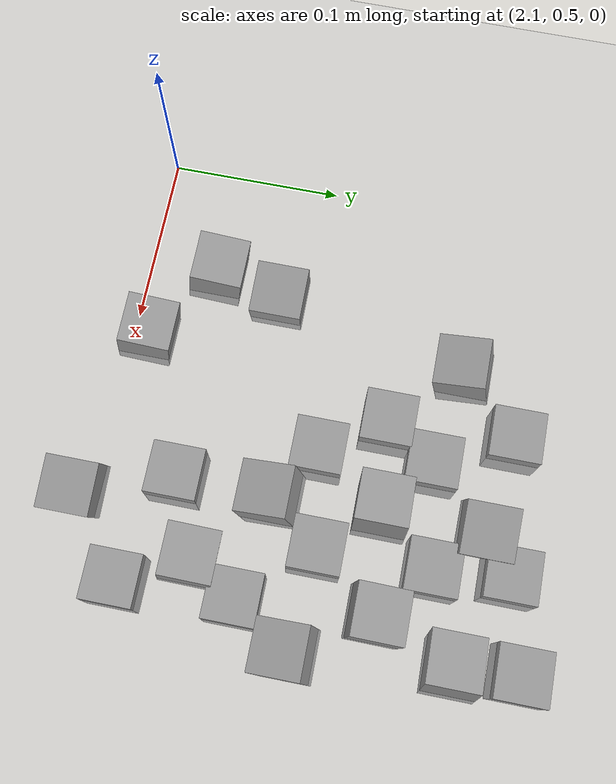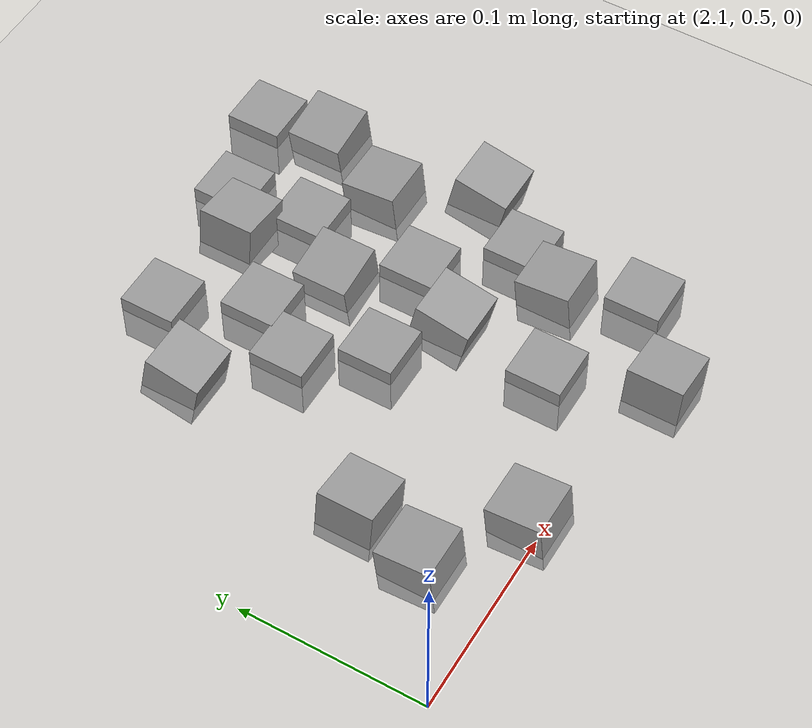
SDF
<sdf version="1.7">
 <world name="default">
  <model name="ground_plane">
   <static>1</static>
   <link name="link">
    <collision name="collision">
     <geometry><plane><normal>0 0 1</normal><size>100 100</size></plane></geometry>
     <surface><friction><ode><mu>100</mu><mu2>50</mu2></ode></friction></surface>
    </collision>
    <visual name="visual">
     <cast_shadows>0</cast_shadows>
     <geometry><plane><normal>0 0 1</normal><size>100 100</size></plane></geometry>
     <material>
      <script><uri>file://media/materials/scripts/gazebo.material</uri><name>Gazebo/Grey</name></script>
     </material>
    </visual>
   </link>
  </model>
  <model name="stone_road_3">
   <link name="link_0_clone_2_clone_2_clone_13_clone">
    <inertial>
     <mass>1</mass>
     <inertia>
      <ixx>0.166667</ixx>
      <ixy>0</ixy>
      <ixz>0</ixz>
      <iyy>0.166667</iyy>
      <iyz>0</iyz>
      <izz>0.166667</izz>
     </inertia>
    </inertial>
    <pose>0.138846 0.140956 0.003778 -0.1 0 0</pose>
    <kinematic>1</kinematic>
    <visual name="visual">
     <geometry><box><size>0.03 0.03 0.03</size></box></geometry>
     <material>
      <lighting>1</lighting>
      <script><uri>file://media/materials/scripts/gazebo.material</uri><name>Gazebo/Grey</name></script>
      <shader type="pixel"><normal_map>__default__</normal_map></shader>
      <ambient>0.3 0.3 0.3 1</ambient>
      <diffuse>0.7 0.7 0.7 1</diffuse>
      <specular>0.01 0.01 0.01 1</specular>
      <emissive>0 0 0 1</emissive>
     </material>
    </visual>
    <collision name="collision">
     <geometry><box><size>0.03 0.03 0.03</size></box></geometry>
     <surface>
      <friction>
       <ode><mu>1</mu><mu2>1</mu2><fdir1>0 0 0</fdir1><slip1>0</slip1><slip2>0</slip2></ode>
       <torsional>
        <coefficient>1</coefficient>
        <patch_radius>0</patch_radius>
        <surface_radius>0</surface_radius>
        <use_patch_radius>1</use_patch_radius>
        <ode><slip>0</slip></ode>
       </torsional>
      </friction>
      <bounce><restitution_coefficient>0</restitution_coefficient><threshold>1e+06</threshold></bounce>
      <contact>
       <collide_without_contact>0</collide_without_contact>
       <collide_without_contact_bitmask>1</collide_without_contact_bitmask>
       <collide_bitmask>1</collide_bitmask>
       <ode>
        <soft_cfm>0</soft_cfm>
        <soft_erp>0.2</soft_erp>
        <kp>1e+13</kp>
        <kd>1</kd>
        <max_vel>0.01</max_vel>
        <min_depth>0</min_depth>
       </ode>
       <bullet>
        <split_impulse>1</split_impulse>
        <split_impulse_penetration_threshold>-0.01</split_impulse_penetration_threshold>
        <soft_cfm>0</soft_cfm>
        <soft_erp>0.2</soft_erp>
        <kp>1e+13</kp>
        <kd>1</kd>
       </bullet>
      </contact>
     </surface>
    </collision>
   </link>
   <link name="link_0_clone_2_clone_2_clone_13_clone_clone">
    <inertial>
     <mass>1</mass>
     <inertia>
      <ixx>0.166667</ixx>
      <ixy>0</ixy>
      <ixz>0</ixz>
      <iyy>0.166667</iyy>
      <iyz>0</iyz>
      <izz>0.166667</izz>
     </inertia>
    </inertial>
    <pose>0.184456 0.108712 0.003778 -0.1 0 0</pose>
    <kinematic>1</kinematic>
    <visual name="visual">
     <geometry><box><size>0.03 0.03 0.03</size></box></geometry>
     <material>
      <lighting>1</lighting>
      <script><uri>file://media/materials/scripts/gazebo.material</uri><name>Gazebo/Grey</name></script>
      <shader type="pixel"><normal_map>__default__</normal_map></shader>
      <ambient>0.3 0.3 0.3 1</ambient>
      <diffuse>0.7 0.7 0.7 1</diffuse>
      <specular>0.01 0.01 0.01 1</specular>
      <emissive>0 0 0 1</emissive>
     </material>
    </visual>
    <collision name="collision">
     <geometry><box><size>0.03 0.03 0.03</size></box></geometry>
     <surface>
      <friction>
       <ode><mu>1</mu><mu2>1</mu2><fdir1>0 0 0</fdir1><slip1>0</slip1><slip2>0</slip2></ode>
       <torsional>
        <coefficient>1</coefficient>
        <patch_radius>0</patch_radius>
        <surface_radius>0</surface_radius>
        <use_patch_radius>1</use_patch_radius>
        <ode><slip>0</slip></ode>
       </torsional>
      </friction>
      <bounce><restitution_coefficient>0</restitution_coefficient><threshold>1e+06</threshold></bounce>
      <contact>
       <collide_without_contact>0</collide_without_contact>
       <collide_without_contact_bitmask>1</collide_without_contact_bitmask>
       <collide_bitmask>1</collide_bitmask>
       <ode>
        <soft_cfm>0</soft_cfm>
        <soft_erp>0.2</soft_erp>
        <kp>1e+13</kp>
        <kd>1</kd>
        <max_vel>0.01</max_vel>
        <min_depth>0</min_depth>
       </ode>
       <bullet>
        <split_impulse>1</split_impulse>
        <split_impulse_penetration_threshold>-0.01</split_impulse_penetration_threshold>
        <soft_cfm>0</soft_cfm>
        <soft_erp>0.2</soft_erp>
        <kp>1e+13</kp>
        <kd>1</kd>
       </bullet>
      </contact>
     </surface>
    </collision>
   </link>
   <link name="link_0_clone_2_clone_9">
    <inertial>
     <mass>1</mass>
     <inertia>
      <ixx>0.166667</ixx>
      <ixy>0</ixy>
      <ixz>0</ixz>
      <iyy>0.166667</iyy>
      <iyz>0</iyz>
      <izz>0.166667</izz>
     </inertia>
    </inertial>
    <pose>0.148876 0.179752 0.003778 0 0.15 0</pose>
    <kinematic>1</kinematic>
    <visual name="visual">
     <geometry><box><size>0.03 0.03 0.03</size></box></geometry>
     <material>
      <lighting>1</lighting>
      <script><uri>file://media/materials/scripts/gazebo.material</uri><name>Gazebo/Grey</name></script>
      <shader type="pixel"><normal_map>__default__</normal_map></shader>
      <ambient>0.3 0.3 0.3 1</ambient>
      <diffuse>0.7 0.7 0.7 1</diffuse>
      <specular>0.01 0.01 0.01 1</specular>
      <emissive>0 0 0 1</emissive>
     </material>
    </visual>
    <collision name="collision">
     <geometry><box><size>0.03 0.03 0.03</size></box></geometry>
     <surface>
      <friction>
       <ode><mu>1</mu><mu2>1</mu2><fdir1>0 0 0</fdir1><slip1>0</slip1><slip2>0</slip2></ode>
       <torsional>
        <coefficient>1</coefficient>
        <patch_radius>0</patch_radius>
        <surface_radius>0</surface_radius>
        <use_patch_radius>1</use_patch_radius>
        <ode><slip>0</slip></ode>
       </torsional>
      </friction>
      <bounce><restitution_coefficient>0</restitution_coefficient><threshold>1e+06</threshold></bounce>
      <contact>
       <collide_without_contact>0</collide_without_contact>
       <collide_without_contact_bitmask>1</collide_without_contact_bitmask>
       <collide_bitmask>1</collide_bitmask>
       <ode>
        <soft_cfm>0</soft_cfm>
        <soft_erp>0.2</soft_erp>
        <kp>1e+13</kp>
        <kd>1</kd>
        <max_vel>0.01</max_vel>
        <min_depth>0</min_depth>
       </ode>
       <bullet>
        <split_impulse>1</split_impulse>
        <split_impulse_penetration_threshold>-0.01</split_impulse_penetration_threshold>
        <soft_cfm>0</soft_cfm>
        <soft_erp>0.2</soft_erp>
        <kp>1e+13</kp>
        <kd>1</kd>
       </bullet>
      </contact>
     </surface>
    </collision>
   </link>
   <static>0</static>
   <pose>2.02404 0.399702 -0 0 -0 0</pose>
  </model>
  <model name="stone_road_8">
   <link name="link_0_clone_0">
    <inertial>
     <mass>1</mass>
     <inertia>
      <ixx>0.166667</ixx>
      <ixy>0</ixy>
      <ixz>0</ixz>
      <iyy>0.166667</iyy>
      <iyz>0</iyz>
      <izz>0.166667</izz>
     </inertia>
    </inertial>
    <pose>-0.104982 -0.15412 0.003778 0.2 -0 0</pose>
    <kinematic>1</kinematic>
    <visual name="visual">
     <geometry><box><size>0.03 0.03 0.03</size></box></geometry>
     <material>
      <lighting>1</lighting>
      <script><uri>file://media/materials/scripts/gazebo.material</uri><name>Gazebo/Grey</name></script>
      <shader type="pixel"><normal_map>__default__</normal_map></shader>
      <ambient>0.3 0.3 0.3 1</ambient>
      <diffuse>0.7 0.7 0.7 1</diffuse>
      <specular>0.01 0.01 0.01 1</specular>
      <emissive>0 0 0 1</emissive>
     </material>
    </visual>
    <collision name="collision">
     <geometry><box><size>0.03 0.03 0.03</size></box></geometry>
     <surface>
      <friction>
       <ode><mu>1</mu><mu2>1</mu2><fdir1>0 0 0</fdir1><slip1>0</slip1><slip2>0</slip2></ode>
       <torsional>
        <coefficient>1</coefficient>
        <patch_radius>0</patch_radius>
        <surface_radius>0</surface_radius>
        <use_patch_radius>1</use_patch_radius>
        <ode><slip>0</slip></ode>
       </torsional>
      </friction>
      <bounce><restitution_coefficient>0</restitution_coefficient><threshold>1e+06</threshold></bounce>
      <contact>
       <collide_without_contact>0</collide_without_contact>
       <collide_without_contact_bitmask>1</collide_without_contact_bitmask>
       <collide_bitmask>1</collide_bitmask>
       <ode>
        <soft_cfm>0</soft_cfm>
        <soft_erp>0.2</soft_erp>
        <kp>1e+13</kp>
        <kd>1</kd>
        <max_vel>0.01</max_vel>
        <min_depth>0</min_depth>
       </ode>
       <bullet>
        <split_impulse>1</split_impulse>
        <split_impulse_penetration_threshold>-0.01</split_impulse_penetration_threshold>
        <soft_cfm>0</soft_cfm>
        <soft_erp>0.2</soft_erp>
        <kp>1e+13</kp>
        <kd>1</kd>
       </bullet>
      </contact>
     </surface>
    </collision>
   </link>
   <link name="link_0_clone_1">
    <inertial>
     <mass>1</mass>
     <inertia>
      <ixx>0.166667</ixx>
      <ixy>0</ixy>
      <ixz>0</ixz>
      <iyy>0.166667</iyy>
      <iyz>0</iyz>
      <izz>0.166667</izz>
     </inertia>
    </inertial>
    <pose>-0.022921 -0.129606 0.003778 0.2 -0 0</pose>
    <kinematic>1</kinematic>
    <visual name="visual">
     <geometry><box><size>0.03 0.03 0.03</size></box></geometry>
     <material>
      <lighting>1</lighting>
      <script><uri>file://media/materials/scripts/gazebo.material</uri><name>Gazebo/Grey</name></script>
      <shader type="pixel"><normal_map>__default__</normal_map></shader>
      <ambient>0.3 0.3 0.3 1</ambient>
      <diffuse>0.7 0.7 0.7 1</diffuse>
      <specular>0.01 0.01 0.01 1</specular>
      <emissive>0 0 0 1</emissive>
     </material>
    </visual>
    <collision name="collision">
     <geometry><box><size>0.03 0.03 0.03</size></box></geometry>
     <surface>
      <friction>
       <ode><mu>1</mu><mu2>1</mu2><fdir1>0 0 0</fdir1><slip1>0</slip1><slip2>0</slip2></ode>
       <torsional>
        <coefficient>1</coefficient>
        <patch_radius>0</patch_radius>
        <surface_radius>0</surface_radius>
        <use_patch_radius>1</use_patch_radius>
        <ode><slip>0</slip></ode>
       </torsional>
      </friction>
      <bounce><restitution_coefficient>0</restitution_coefficient><threshold>1e+06</threshold></bounce>
      <contact>
       <collide_without_contact>0</collide_without_contact>
       <collide_without_contact_bitmask>1</collide_without_contact_bitmask>
       <collide_bitmask>1</collide_bitmask>
       <ode>
        <soft_cfm>0</soft_cfm>
        <soft_erp>0.2</soft_erp>
        <kp>1e+13</kp>
        <kd>1</kd>
        <max_vel>0.01</max_vel>
        <min_depth>0</min_depth>
       </ode>
       <bullet>
        <split_impulse>1</split_impulse>
        <split_impulse_penetration_threshold>-0.01</split_impulse_penetration_threshold>
        <soft_cfm>0</soft_cfm>
        <soft_erp>0.2</soft_erp>
        <kp>1e+13</kp>
        <kd>1</kd>
       </bullet>
      </contact>
     </surface>
    </collision>
   </link>
   <link name="link_0_clone_2_clone">
    <inertial>
     <mass>1</mass>
     <inertia>
      <ixx>0.166667</ixx>
      <ixy>0</ixy>
      <ixz>0</ixz>
      <iyy>0.166667</iyy>
      <iyz>0</iyz>
      <izz>0.166667</izz>
     </inertia>
    </inertial>
    <pose>-0.10771 -0.03187 0.003778 0 0.15 0</pose>
    <kinematic>1</kinematic>
    <visual name="visual">
     <geometry><box><size>0.03 0.03 0.03</size></box></geometry>
     <material>
      <lighting>1</lighting>
      <script><uri>file://media/materials/scripts/gazebo.material</uri><name>Gazebo/Grey</name></script>
      <shader type="pixel"><normal_map>__default__</normal_map></shader>
      <ambient>0.3 0.3 0.3 1</ambient>
      <diffuse>0.7 0.7 0.7 1</diffuse>
      <specular>0.01 0.01 0.01 1</specular>
      <emissive>0 0 0 1</emissive>
     </material>
    </visual>
    <collision name="collision">
     <geometry><box><size>0.03 0.03 0.03</size></box></geometry>
     <surface>
      <friction>
       <ode><mu>1</mu><mu2>1</mu2><fdir1>0 0 0</fdir1><slip1>0</slip1><slip2>0</slip2></ode>
       <torsional>
        <coefficient>1</coefficient>
        <patch_radius>0</patch_radius>
        <surface_radius>0</surface_radius>
        <use_patch_radius>1</use_patch_radius>
        <ode><slip>0</slip></ode>
       </torsional>
      </friction>
      <bounce><restitution_coefficient>0</restitution_coefficient><threshold>1e+06</threshold></bounce>
      <contact>
       <collide_without_contact>0</collide_without_contact>
       <collide_without_contact_bitmask>1</collide_without_contact_bitmask>
       <collide_bitmask>1</collide_bitmask>
       <ode>
        <soft_cfm>0</soft_cfm>
        <soft_erp>0.2</soft_erp>
        <kp>1e+13</kp>
        <kd>1</kd>
        <max_vel>0.01</max_vel>
        <min_depth>0</min_depth>
       </ode>
       <bullet>
        <split_impulse>1</split_impulse>
        <split_impulse_penetration_threshold>-0.01</split_impulse_penetration_threshold>
        <soft_cfm>0</soft_cfm>
        <soft_erp>0.2</soft_erp>
        <kp>1e+13</kp>
        <kd>1</kd>
       </bullet>
      </contact>
     </surface>
    </collision>
   </link>
   <link name="link_0_clone_2_clone_2_clone_0">
    <inertial>
     <mass>1</mass>
     <inertia>
      <ixx>0.166667</ixx>
      <ixy>0</ixy>
      <ixz>0</ixz>
      <iyy>0.166667</iyy>
      <iyz>0</iyz>
      <izz>0.166667</izz>
     </inertia>
    </inertial>
    <pose>-0.032874 -0.039714 0.003778 0 -0.15 0</pose>
    <kinematic>1</kinematic>
    <visual name="visual">
     <geometry><box><size>0.03 0.03 0.03</size></box></geometry>
     <material>
      <lighting>1</lighting>
      <script><uri>file://media/materials/scripts/gazebo.material</uri><name>Gazebo/Grey</name></script>
      <shader type="pixel"><normal_map>__default__</normal_map></shader>
      <ambient>0.3 0.3 0.3 1</ambient>
      <diffuse>0.7 0.7 0.7 1</diffuse>
      <specular>0.01 0.01 0.01 1</specular>
      <emissive>0 0 0 1</emissive>
     </material>
    </visual>
    <collision name="collision">
     <geometry><box><size>0.03 0.03 0.03</size></box></geometry>
     <surface>
      <friction>
       <ode><mu>1</mu><mu2>1</mu2><fdir1>0 0 0</fdir1><slip1>0</slip1><slip2>0</slip2></ode>
       <torsional>
        <coefficient>1</coefficient>
        <patch_radius>0</patch_radius>
        <surface_radius>0</surface_radius>
        <use_patch_radius>1</use_patch_radius>
        <ode><slip>0</slip></ode>
       </torsional>
      </friction>
      <bounce><restitution_coefficient>0</restitution_coefficient><threshold>1e+06</threshold></bounce>
      <contact>
       <collide_without_contact>0</collide_without_contact>
       <collide_without_contact_bitmask>1</collide_without_contact_bitmask>
       <collide_bitmask>1</collide_bitmask>
       <ode>
        <soft_cfm>0</soft_cfm>
        <soft_erp>0.2</soft_erp>
        <kp>1e+13</kp>
        <kd>1</kd>
        <max_vel>0.01</max_vel>
        <min_depth>0</min_depth>
       </ode>
       <bullet>
        <split_impulse>1</split_impulse>
        <split_impulse_penetration_threshold>-0.01</split_impulse_penetration_threshold>
        <soft_cfm>0</soft_cfm>
        <soft_erp>0.2</soft_erp>
        <kp>1e+13</kp>
        <kd>1</kd>
       </bullet>
      </contact>
     </surface>
    </collision>
   </link>
   <link name="link_0_clone_2_clone_2_clone_13_clone_clone_16_clone_10">
    <inertial>
     <mass>1</mass>
     <inertia>
      <ixx>0.166667</ixx>
      <ixy>0</ixy>
      <ixz>0</ixz>
      <iyy>0.166667</iyy>
      <iyz>0</iyz>
      <izz>0.166667</izz>
     </inertia>
    </inertial>
    <pose>-0.082186 -0.05781 -0.006222 0 -0 0</pose>
    <kinematic>1</kinematic>
    <visual name="visual">
     <geometry><box><size>0.03 0.03 0.03</size></box></geometry>
     <material>
      <lighting>1</lighting>
      <script><uri>file://media/materials/scripts/gazebo.material</uri><name>Gazebo/Grey</name></script>
      <shader type="pixel"><normal_map>__default__</normal_map></shader>
      <ambient>0.3 0.3 0.3 1</ambient>
      <diffuse>0.7 0.7 0.7 1</diffuse>
      <specular>0.01 0.01 0.01 1</specular>
      <emissive>0 0 0 1</emissive>
     </material>
    </visual>
    <collision name="collision">
     <geometry><box><size>0.03 0.03 0.03</size></box></geometry>
     <surface>
      <friction>
       <ode><mu>1</mu><mu2>1</mu2><fdir1>0 0 0</fdir1><slip1>0</slip1><slip2>0</slip2></ode>
       <torsional>
        <coefficient>1</coefficient>
        <patch_radius>0</patch_radius>
        <surface_radius>0</surface_radius>
        <use_patch_radius>1</use_patch_radius>
        <ode><slip>0</slip></ode>
       </torsional>
      </friction>
      <bounce><restitution_coefficient>0</restitution_coefficient><threshold>1e+06</threshold></bounce>
      <contact>
       <collide_without_contact>0</collide_without_contact>
       <collide_without_contact_bitmask>1</collide_without_contact_bitmask>
       <collide_bitmask>1</collide_bitmask>
       <ode>
        <soft_cfm>0</soft_cfm>
        <soft_erp>0.2</soft_erp>
        <kp>1e+13</kp>
        <kd>1</kd>
        <max_vel>0.01</max_vel>
        <min_depth>0</min_depth>
       </ode>
       <bullet>
        <split_impulse>1</split_impulse>
        <split_impulse_penetration_threshold>-0.01</split_impulse_penetration_threshold>
        <soft_cfm>0</soft_cfm>
        <soft_erp>0.2</soft_erp>
        <kp>1e+13</kp>
        <kd>1</kd>
       </bullet>
      </contact>
     </surface>
    </collision>
   </link>
   <link name="link_0_clone_2_clone_2_clone_13_clone_clone_16_clone_11">
    <inertial>
     <mass>1</mass>
     <inertia>
      <ixx>0.166667</ixx>
      <ixy>0</ixy>
      <ixz>0</ixz>
      <iyy>0.166667</iyy>
      <iyz>0</iyz>
      <izz>0.166667</izz>
     </inertia>
    </inertial>
    <pose>-0.141844 -0.066911 -0.006222 0 -0 0</pose>
    <kinematic>1</kinematic>
    <visual name="visual">
     <geometry><box><size>0.03 0.03 0.03</size></box></geometry>
     <material>
      <lighting>1</lighting>
      <script><uri>file://media/materials/scripts/gazebo.material</uri><name>Gazebo/Grey</name></script>
      <shader type="pixel"><normal_map>__default__</normal_map></shader>
      <ambient>0.3 0.3 0.3 1</ambient>
      <diffuse>0.7 0.7 0.7 1</diffuse>
      <specular>0.01 0.01 0.01 1</specular>
      <emissive>0 0 0 1</emissive>
     </material>
    </visual>
    <collision name="collision">
     <geometry><box><size>0.03 0.03 0.03</size></box></geometry>
     <surface>
      <friction>
       <ode><mu>1</mu><mu2>1</mu2><fdir1>0 0 0</fdir1><slip1>0</slip1><slip2>0</slip2></ode>
       <torsional>
        <coefficient>1</coefficient>
        <patch_radius>0</patch_radius>
        <surface_radius>0</surface_radius>
        <use_patch_radius>1</use_patch_radius>
        <ode><slip>0</slip></ode>
       </torsional>
      </friction>
      <bounce><restitution_coefficient>0</restitution_coefficient><threshold>1e+06</threshold></bounce>
      <contact>
       <collide_without_contact>0</collide_without_contact>
       <collide_without_contact_bitmask>1</collide_without_contact_bitmask>
       <collide_bitmask>1</collide_bitmask>
       <ode>
        <soft_cfm>0</soft_cfm>
        <soft_erp>0.2</soft_erp>
        <kp>1e+13</kp>
        <kd>1</kd>
        <max_vel>0.01</max_vel>
        <min_depth>0</min_depth>
       </ode>
       <bullet>
        <split_impulse>1</split_impulse>
        <split_impulse_penetration_threshold>-0.01</split_impulse_penetration_threshold>
        <soft_cfm>0</soft_cfm>
        <soft_erp>0.2</soft_erp>
        <kp>1e+13</kp>
        <kd>1</kd>
       </bullet>
      </contact>
     </surface>
    </collision>
   </link>
   <link name="link_0_clone_2_clone_2_clone_13_clone_clone_16_clone_12">
    <inertial>
     <mass>1</mass>
     <inertia>
      <ixx>0.166667</ixx>
      <ixy>0</ixy>
      <ixz>0</ixz>
      <iyy>0.166667</iyy>
      <iyz>0</iyz>
      <izz>0.166667</izz>
     </inertia>
    </inertial>
    <pose>-0.164908 -0.022947 -0.006222 0 -0 0</pose>
    <kinematic>1</kinematic>
    <visual name="visual">
     <geometry><box><size>0.03 0.03 0.03</size></box></geometry>
     <material>
      <lighting>1</lighting>
      <script><uri>file://media/materials/scripts/gazebo.material</uri><name>Gazebo/Grey</name></script>
      <shader type="pixel"><normal_map>__default__</normal_map></shader>
      <ambient>0.3 0.3 0.3 1</ambient>
      <diffuse>0.7 0.7 0.7 1</diffuse>
      <specular>0.01 0.01 0.01 1</specular>
      <emissive>0 0 0 1</emissive>
     </material>
    </visual>
    <collision name="collision">
     <geometry><box><size>0.03 0.03 0.03</size></box></geometry>
     <surface>
      <friction>
       <ode><mu>1</mu><mu2>1</mu2><fdir1>0 0 0</fdir1><slip1>0</slip1><slip2>0</slip2></ode>
       <torsional>
        <coefficient>1</coefficient>
        <patch_radius>0</patch_radius>
        <surface_radius>0</surface_radius>
        <use_patch_radius>1</use_patch_radius>
        <ode><slip>0</slip></ode>
       </torsional>
      </friction>
      <bounce><restitution_coefficient>0</restitution_coefficient><threshold>1e+06</threshold></bounce>
      <contact>
       <collide_without_contact>0</collide_without_contact>
       <collide_without_contact_bitmask>1</collide_without_contact_bitmask>
       <collide_bitmask>1</collide_bitmask>
       <ode>
        <soft_cfm>0</soft_cfm>
        <soft_erp>0.2</soft_erp>
        <kp>1e+13</kp>
        <kd>1</kd>
        <max_vel>0.01</max_vel>
        <min_depth>0</min_depth>
       </ode>
       <bullet>
        <split_impulse>1</split_impulse>
        <split_impulse_penetration_threshold>-0.01</split_impulse_penetration_threshold>
        <soft_cfm>0</soft_cfm>
        <soft_erp>0.2</soft_erp>
        <kp>1e+13</kp>
        <kd>1</kd>
       </bullet>
      </contact>
     </surface>
    </collision>
   </link>
   <link name="link_0_clone_2_clone_2_clone_13_clone_clone_16_clone_26">
    <inertial>
     <mass>1</mass>
     <inertia>
      <ixx>0.166667</ixx>
      <ixy>0</ixy>
      <ixz>0</ixz>
      <iyy>0.166667</iyy>
      <iyz>0</iyz>
      <izz>0.166667</izz>
     </inertia>
    </inertial>
    <pose>-0.035162 -0.002247 -0.006222 0 -0 0</pose>
    <kinematic>1</kinematic>
    <visual name="visual">
     <geometry><box><size>0.03 0.03 0.03</size></box></geometry>
     <material>
      <lighting>1</lighting>
      <script><uri>file://media/materials/scripts/gazebo.material</uri><name>Gazebo/Grey</name></script>
      <shader type="pixel"><normal_map>__default__</normal_map></shader>
      <ambient>0.3 0.3 0.3 1</ambient>
      <diffuse>0.7 0.7 0.7 1</diffuse>
      <specular>0.01 0.01 0.01 1</specular>
      <emissive>0 0 0 1</emissive>
     </material>
    </visual>
    <collision name="collision">
     <geometry><box><size>0.03 0.03 0.03</size></box></geometry>
     <surface>
      <friction>
       <ode><mu>1</mu><mu2>1</mu2><fdir1>0 0 0</fdir1><slip1>0</slip1><slip2>0</slip2></ode>
       <torsional>
        <coefficient>1</coefficient>
        <patch_radius>0</patch_radius>
        <surface_radius>0</surface_radius>
        <use_patch_radius>1</use_patch_radius>
        <ode><slip>0</slip></ode>
       </torsional>
      </friction>
      <bounce><restitution_coefficient>0</restitution_coefficient><threshold>1e+06</threshold></bounce>
      <contact>
       <collide_without_contact>0</collide_without_contact>
       <collide_without_contact_bitmask>1</collide_without_contact_bitmask>
       <collide_bitmask>1</collide_bitmask>
       <ode>
        <soft_cfm>0</soft_cfm>
        <soft_erp>0.2</soft_erp>
        <kp>1e+13</kp>
        <kd>1</kd>
        <max_vel>0.01</max_vel>
        <min_depth>0</min_depth>
       </ode>
       <bullet>
        <split_impulse>1</split_impulse>
        <split_impulse_penetration_threshold>-0.01</split_impulse_penetration_threshold>
        <soft_cfm>0</soft_cfm>
        <soft_erp>0.2</soft_erp>
        <kp>1e+13</kp>
        <kd>1</kd>
       </bullet>
      </contact>
     </surface>
    </collision>
   </link>
   <link name="link_0_clone_2_clone_2_clone_13_clone_clone_16_clone_27">
    <inertial>
     <mass>1</mass>
     <inertia>
      <ixx>0.166667</ixx>
      <ixy>0</ixy>
      <ixz>0</ixz>
      <iyy>0.166667</iyy>
      <iyz>0</iyz>
      <izz>0.166667</izz>
     </inertia>
    </inertial>
    <pose>-0.137316 -0.132225 -0.006222 0 -0 0</pose>
    <kinematic>1</kinematic>
    <visual name="visual">
     <geometry><box><size>0.03 0.03 0.03</size></box></geometry>
     <material>
      <lighting>1</lighting>
      <script><uri>file://media/materials/scripts/gazebo.material</uri><name>Gazebo/Grey</name></script>
      <shader type="pixel"><normal_map>__default__</normal_map></shader>
      <ambient>0.3 0.3 0.3 1</ambient>
      <diffuse>0.7 0.7 0.7 1</diffuse>
      <specular>0.01 0.01 0.01 1</specular>
      <emissive>0 0 0 1</emissive>
     </material>
    </visual>
    <collision name="collision">
     <geometry><box><size>0.03 0.03 0.03</size></box></geometry>
     <surface>
      <friction>
       <ode><mu>1</mu><mu2>1</mu2><fdir1>0 0 0</fdir1><slip1>0</slip1><slip2>0</slip2></ode>
       <torsional>
        <coefficient>1</coefficient>
        <patch_radius>0</patch_radius>
        <surface_radius>0</surface_radius>
        <use_patch_radius>1</use_patch_radius>
        <ode><slip>0</slip></ode>
       </torsional>
      </friction>
      <bounce><restitution_coefficient>0</restitution_coefficient><threshold>1e+06</threshold></bounce>
      <contact>
       <collide_without_contact>0</collide_without_contact>
       <collide_without_contact_bitmask>1</collide_without_contact_bitmask>
       <collide_bitmask>1</collide_bitmask>
       <ode>
        <soft_cfm>0</soft_cfm>
        <soft_erp>0.2</soft_erp>
        <kp>1e+13</kp>
        <kd>1</kd>
        <max_vel>0.01</max_vel>
        <min_depth>0</min_depth>
       </ode>
       <bullet>
        <split_impulse>1</split_impulse>
        <split_impulse_penetration_threshold>-0.01</split_impulse_penetration_threshold>
        <soft_cfm>0</soft_cfm>
        <soft_erp>0.2</soft_erp>
        <kp>1e+13</kp>
        <kd>1</kd>
       </bullet>
      </contact>
     </surface>
    </collision>
   </link>
   <link name="link_0_clone_2_clone_2_clone_13_clone_clone_16_clone_28">
    <inertial>
     <mass>1</mass>
     <inertia>
      <ixx>0.166667</ixx>
      <ixy>0</ixy>
      <ixz>0</ixz>
      <iyy>0.166667</iyy>
      <iyz>0</iyz>
      <izz>0.166667</izz>
     </inertia>
    </inertial>
    <pose>-0.10708 -0.209042 -0.006222 0 -0 0</pose>
    <kinematic>1</kinematic>
    <visual name="visual">
     <geometry><box><size>0.03 0.03 0.03</size></box></geometry>
     <material>
      <lighting>1</lighting>
      <script><uri>file://media/materials/scripts/gazebo.material</uri><name>Gazebo/Grey</name></script>
      <shader type="pixel"><normal_map>__default__</normal_map></shader>
      <ambient>0.3 0.3 0.3 1</ambient>
      <diffuse>0.7 0.7 0.7 1</diffuse>
      <specular>0.01 0.01 0.01 1</specular>
      <emissive>0 0 0 1</emissive>
     </material>
    </visual>
    <collision name="collision">
     <geometry><box><size>0.03 0.03 0.03</size></box></geometry>
     <surface>
      <friction>
       <ode><mu>1</mu><mu2>1</mu2><fdir1>0 0 0</fdir1><slip1>0</slip1><slip2>0</slip2></ode>
       <torsional>
        <coefficient>1</coefficient>
        <patch_radius>0</patch_radius>
        <surface_radius>0</surface_radius>
        <use_patch_radius>1</use_patch_radius>
        <ode><slip>0</slip></ode>
       </torsional>
      </friction>
      <bounce><restitution_coefficient>0</restitution_coefficient><threshold>1e+06</threshold></bounce>
      <contact>
       <collide_without_contact>0</collide_without_contact>
       <collide_without_contact_bitmask>1</collide_without_contact_bitmask>
       <collide_bitmask>1</collide_bitmask>
       <ode>
        <soft_cfm>0</soft_cfm>
        <soft_erp>0.2</soft_erp>
        <kp>1e+13</kp>
        <kd>1</kd>
        <max_vel>0.01</max_vel>
        <min_depth>0</min_depth>
       </ode>
       <bullet>
        <split_impulse>1</split_impulse>
        <split_impulse_penetration_threshold>-0.01</split_impulse_penetration_threshold>
        <soft_cfm>0</soft_cfm>
        <soft_erp>0.2</soft_erp>
        <kp>1e+13</kp>
        <kd>1</kd>
       </bullet>
      </contact>
     </surface>
    </collision>
   </link>
   <link name="link_0_clone_2_clone_2_clone_13_clone_clone_16_clone_29">
    <inertial>
     <mass>1</mass>
     <inertia>
      <ixx>0.166667</ixx>
      <ixy>0</ixy>
      <ixz>0</ixz>
      <iyy>0.166667</iyy>
      <iyz>0</iyz>
      <izz>0.166667</izz>
     </inertia>
    </inertial>
    <pose>-0.042964 -0.229632 -0.006222 0 -0 0</pose>
    <kinematic>1</kinematic>
    <visual name="visual">
     <geometry><box><size>0.03 0.03 0.03</size></box></geometry>
     <material>
      <lighting>1</lighting>
      <script><uri>file://media/materials/scripts/gazebo.material</uri><name>Gazebo/Grey</name></script>
      <shader type="pixel"><normal_map>__default__</normal_map></shader>
      <ambient>0.3 0.3 0.3 1</ambient>
      <diffuse>0.7 0.7 0.7 1</diffuse>
      <specular>0.01 0.01 0.01 1</specular>
      <emissive>0 0 0 1</emissive>
     </material>
    </visual>
    <collision name="collision">
     <geometry><box><size>0.03 0.03 0.03</size></box></geometry>
     <surface>
      <friction>
       <ode><mu>1</mu><mu2>1</mu2><fdir1>0 0 0</fdir1><slip1>0</slip1><slip2>0</slip2></ode>
       <torsional>
        <coefficient>1</coefficient>
        <patch_radius>0</patch_radius>
        <surface_radius>0</surface_radius>
        <use_patch_radius>1</use_patch_radius>
        <ode><slip>0</slip></ode>
       </torsional>
      </friction>
      <bounce><restitution_coefficient>0</restitution_coefficient><threshold>1e+06</threshold></bounce>
      <contact>
       <collide_without_contact>0</collide_without_contact>
       <collide_without_contact_bitmask>1</collide_without_contact_bitmask>
       <collide_bitmask>1</collide_bitmask>
       <ode>
        <soft_cfm>0</soft_cfm>
        <soft_erp>0.2</soft_erp>
        <kp>1e+13</kp>
        <kd>1</kd>
        <max_vel>0.01</max_vel>
        <min_depth>0</min_depth>
       </ode>
       <bullet>
        <split_impulse>1</split_impulse>
        <split_impulse_penetration_threshold>-0.01</split_impulse_penetration_threshold>
        <soft_cfm>0</soft_cfm>
        <soft_erp>0.2</soft_erp>
        <kp>1e+13</kp>
        <kd>1</kd>
       </bullet>
      </contact>
     </surface>
    </collision>
   </link>
   <link name="link_0_clone_2_clone_2_clone_13_clone_clone_16_clone_30">
    <inertial>
     <mass>1</mass>
     <inertia>
      <ixx>0.166667</ixx>
      <ixy>0</ixy>
      <ixz>0</ixz>
      <iyy>0.166667</iyy>
      <iyz>0</iyz>
      <izz>0.166667</izz>
     </inertia>
    </inertial>
    <pose>-0.160879 -0.095951 -0.006222 0 -0 0</pose>
    <kinematic>1</kinematic>
    <visual name="visual">
     <geometry><box><size>0.03 0.03 0.03</size></box></geometry>
     <material>
      <lighting>1</lighting>
      <script><uri>file://media/materials/scripts/gazebo.material</uri><name>Gazebo/Grey</name></script>
      <shader type="pixel"><normal_map>__default__</normal_map></shader>
      <ambient>0.3 0.3 0.3 1</ambient>
      <diffuse>0.7 0.7 0.7 1</diffuse>
      <specular>0.01 0.01 0.01 1</specular>
      <emissive>0 0 0 1</emissive>
     </material>
    </visual>
    <collision name="collision">
     <geometry><box><size>0.03 0.03 0.03</size></box></geometry>
     <surface>
      <friction>
       <ode><mu>1</mu><mu2>1</mu2><fdir1>0 0 0</fdir1><slip1>0</slip1><slip2>0</slip2></ode>
       <torsional>
        <coefficient>1</coefficient>
        <patch_radius>0</patch_radius>
        <surface_radius>0</surface_radius>
        <use_patch_radius>1</use_patch_radius>
        <ode><slip>0</slip></ode>
       </torsional>
      </friction>
      <bounce><restitution_coefficient>0</restitution_coefficient><threshold>1e+06</threshold></bounce>
      <contact>
       <collide_without_contact>0</collide_without_contact>
       <collide_without_contact_bitmask>1</collide_without_contact_bitmask>
       <collide_bitmask>1</collide_bitmask>
       <ode>
        <soft_cfm>0</soft_cfm>
        <soft_erp>0.2</soft_erp>
        <kp>1e+13</kp>
        <kd>1</kd>
        <max_vel>0.01</max_vel>
        <min_depth>0</min_depth>
       </ode>
       <bullet>
        <split_impulse>1</split_impulse>
        <split_impulse_penetration_threshold>-0.01</split_impulse_penetration_threshold>
        <soft_cfm>0</soft_cfm>
        <soft_erp>0.2</soft_erp>
        <kp>1e+13</kp>
        <kd>1</kd>
       </bullet>
      </contact>
     </surface>
    </collision>
   </link>
   <link name="link_0_clone_2_clone_2_clone_13_clone_clone_16_clone_5">
    <inertial>
     <mass>1</mass>
     <inertia>
      <ixx>0.166667</ixx>
      <ixy>0</ixy>
      <ixz>0</ixz>
      <iyy>0.166667</iyy>
      <iyz>0</iyz>
      <izz>0.166667</izz>
     </inertia>
    </inertial>
    <pose>-0.086674 -0.014784 -0.006222 0 -0 0</pose>
    <kinematic>1</kinematic>
    <visual name="visual">
     <geometry><box><size>0.03 0.03 0.03</size></box></geometry>
     <material>
      <lighting>1</lighting>
      <script><uri>file://media/materials/scripts/gazebo.material</uri><name>Gazebo/Grey</name></script>
      <shader type="pixel"><normal_map>__default__</normal_map></shader>
      <ambient>0.3 0.3 0.3 1</ambient>
      <diffuse>0.7 0.7 0.7 1</diffuse>
      <specular>0.01 0.01 0.01 1</specular>
      <emissive>0 0 0 1</emissive>
     </material>
    </visual>
    <collision name="collision">
     <geometry><box><size>0.03 0.03 0.03</size></box></geometry>
     <surface>
      <friction>
       <ode><mu>1</mu><mu2>1</mu2><fdir1>0 0 0</fdir1><slip1>0</slip1><slip2>0</slip2></ode>
       <torsional>
        <coefficient>1</coefficient>
        <patch_radius>0</patch_radius>
        <surface_radius>0</surface_radius>
        <use_patch_radius>1</use_patch_radius>
        <ode><slip>0</slip></ode>
       </torsional>
      </friction>
      <bounce><restitution_coefficient>0</restitution_coefficient><threshold>1e+06</threshold></bounce>
      <contact>
       <collide_without_contact>0</collide_without_contact>
       <collide_without_contact_bitmask>1</collide_without_contact_bitmask>
       <collide_bitmask>1</collide_bitmask>
       <ode>
        <soft_cfm>0</soft_cfm>
        <soft_erp>0.2</soft_erp>
        <kp>1e+13</kp>
        <kd>1</kd>
        <max_vel>0.01</max_vel>
        <min_depth>0</min_depth>
       </ode>
       <bullet>
        <split_impulse>1</split_impulse>
        <split_impulse_penetration_threshold>-0.01</split_impulse_penetration_threshold>
        <soft_cfm>0</soft_cfm>
        <soft_erp>0.2</soft_erp>
        <kp>1e+13</kp>
        <kd>1</kd>
       </bullet>
      </contact>
     </surface>
    </collision>
   </link>
   <link name="link_0_clone_2_clone_2_clone_13_clone_clone_16_clone_8">
    <inertial>
     <mass>1</mass>
     <inertia>
      <ixx>0.166667</ixx>
      <ixy>0</ixy>
      <ixz>0</ixz>
      <iyy>0.166667</iyy>
      <iyz>0</iyz>
      <izz>0.166667</izz>
     </inertia>
    </inertial>
    <pose>-0.045715 -0.162471 -0.006222 0 -0 0</pose>
    <kinematic>1</kinematic>
    <visual name="visual">
     <geometry><box><size>0.03 0.03 0.03</size></box></geometry>
     <material>
      <lighting>1</lighting>
      <script><uri>file://media/materials/scripts/gazebo.material</uri><name>Gazebo/Grey</name></script>
      <shader type="pixel"><normal_map>__default__</normal_map></shader>
      <ambient>0.3 0.3 0.3 1</ambient>
      <diffuse>0.7 0.7 0.7 1</diffuse>
      <specular>0.01 0.01 0.01 1</specular>
      <emissive>0 0 0 1</emissive>
     </material>
    </visual>
    <collision name="collision">
     <geometry><box><size>0.03 0.03 0.03</size></box></geometry>
     <surface>
      <friction>
       <ode><mu>1</mu><mu2>1</mu2><fdir1>0 0 0</fdir1><slip1>0</slip1><slip2>0</slip2></ode>
       <torsional>
        <coefficient>1</coefficient>
        <patch_radius>0</patch_radius>
        <surface_radius>0</surface_radius>
        <use_patch_radius>1</use_patch_radius>
        <ode><slip>0</slip></ode>
       </torsional>
      </friction>
      <bounce><restitution_coefficient>0</restitution_coefficient><threshold>1e+06</threshold></bounce>
      <contact>
       <collide_without_contact>0</collide_without_contact>
       <collide_without_contact_bitmask>1</collide_without_contact_bitmask>
       <collide_bitmask>1</collide_bitmask>
       <ode>
        <soft_cfm>0</soft_cfm>
        <soft_erp>0.2</soft_erp>
        <kp>1e+13</kp>
        <kd>1</kd>
        <max_vel>0.01</max_vel>
        <min_depth>0</min_depth>
       </ode>
       <bullet>
        <split_impulse>1</split_impulse>
        <split_impulse_penetration_threshold>-0.01</split_impulse_penetration_threshold>
        <soft_cfm>0</soft_cfm>
        <soft_erp>0.2</soft_erp>
        <kp>1e+13</kp>
        <kd>1</kd>
       </bullet>
      </contact>
     </surface>
    </collision>
   </link>
   <link name="link_0_clone_2_clone_2_clone_13_clone_clone_16_clone_9">
    <inertial>
     <mass>1</mass>
     <inertia>
      <ixx>0.166667</ixx>
      <ixy>0</ixy>
      <ixz>0</ixz>
      <iyy>0.166667</iyy>
      <iyz>0</iyz>
      <izz>0.166667</izz>
     </inertia>
    </inertial>
    <pose>-0.081689 -0.122641 -0.006222 0 -0 0</pose>
    <kinematic>1</kinematic>
    <visual name="visual">
     <geometry><box><size>0.03 0.03 0.03</size></box></geometry>
     <material>
      <lighting>1</lighting>
      <script><uri>file://media/materials/scripts/gazebo.material</uri><name>Gazebo/Grey</name></script>
      <shader type="pixel"><normal_map>__default__</normal_map></shader>
      <ambient>0.3 0.3 0.3 1</ambient>
      <diffuse>0.7 0.7 0.7 1</diffuse>
      <specular>0.01 0.01 0.01 1</specular>
      <emissive>0 0 0 1</emissive>
     </material>
    </visual>
    <collision name="collision">
     <geometry><box><size>0.03 0.03 0.03</size></box></geometry>
     <surface>
      <friction>
       <ode><mu>1</mu><mu2>1</mu2><fdir1>0 0 0</fdir1><slip1>0</slip1><slip2>0</slip2></ode>
       <torsional>
        <coefficient>1</coefficient>
        <patch_radius>0</patch_radius>
        <surface_radius>0</surface_radius>
        <use_patch_radius>1</use_patch_radius>
        <ode><slip>0</slip></ode>
       </torsional>
      </friction>
      <bounce><restitution_coefficient>0</restitution_coefficient><threshold>1e+06</threshold></bounce>
      <contact>
       <collide_without_contact>0</collide_without_contact>
       <collide_without_contact_bitmask>1</collide_without_contact_bitmask>
       <collide_bitmask>1</collide_bitmask>
       <ode>
        <soft_cfm>0</soft_cfm>
        <soft_erp>0.2</soft_erp>
        <kp>1e+13</kp>
        <kd>1</kd>
        <max_vel>0.01</max_vel>
        <min_depth>0</min_depth>
       </ode>
       <bullet>
        <split_impulse>1</split_impulse>
        <split_impulse_penetration_threshold>-0.01</split_impulse_penetration_threshold>
        <soft_cfm>0</soft_cfm>
        <soft_erp>0.2</soft_erp>
        <kp>1e+13</kp>
        <kd>1</kd>
       </bullet>
      </contact>
     </surface>
    </collision>
   </link>
   <link name="link_0_clone_2_clone_2_clone_13_clone_clone_8">
    <inertial>
     <mass>1</mass>
     <inertia>
      <ixx>0.166667</ixx>
      <ixy>0</ixy>
      <ixz>0</ixz>
      <iyy>0.166667</iyy>
      <iyz>0</iyz>
      <izz>0.166667</izz>
     </inertia>
    </inertial>
    <pose>-0.051207 -0.083778 0.003778 -0.1 0 0</pose>
    <kinematic>1</kinematic>
    <visual name="visual">
     <geometry><box><size>0.03 0.03 0.03</size></box></geometry>
     <material>
      <lighting>1</lighting>
      <script><uri>file://media/materials/scripts/gazebo.material</uri><name>Gazebo/Grey</name></script>
      <shader type="pixel"><normal_map>__default__</normal_map></shader>
      <ambient>0.3 0.3 0.3 1</ambient>
      <diffuse>0.7 0.7 0.7 1</diffuse>
      <specular>0.01 0.01 0.01 1</specular>
      <emissive>0 0 0 1</emissive>
     </material>
    </visual>
    <collision name="collision">
     <geometry><box><size>0.03 0.03 0.03</size></box></geometry>
     <surface>
      <friction>
       <ode><mu>1</mu><mu2>1</mu2><fdir1>0 0 0</fdir1><slip1>0</slip1><slip2>0</slip2></ode>
       <torsional>
        <coefficient>1</coefficient>
        <patch_radius>0</patch_radius>
        <surface_radius>0</surface_radius>
        <use_patch_radius>1</use_patch_radius>
        <ode><slip>0</slip></ode>
       </torsional>
      </friction>
      <bounce><restitution_coefficient>0</restitution_coefficient><threshold>1e+06</threshold></bounce>
      <contact>
       <collide_without_contact>0</collide_without_contact>
       <collide_without_contact_bitmask>1</collide_without_contact_bitmask>
       <collide_bitmask>1</collide_bitmask>
       <ode>
        <soft_cfm>0</soft_cfm>
        <soft_erp>0.2</soft_erp>
        <kp>1e+13</kp>
        <kd>1</kd>
        <max_vel>0.01</max_vel>
        <min_depth>0</min_depth>
       </ode>
       <bullet>
        <split_impulse>1</split_impulse>
        <split_impulse_penetration_threshold>-0.01</split_impulse_penetration_threshold>
        <soft_cfm>0</soft_cfm>
        <soft_erp>0.2</soft_erp>
        <kp>1e+13</kp>
        <kd>1</kd>
       </bullet>
      </contact>
     </surface>
    </collision>
   </link>
   <link name="link_0_clone_2_clone_2_clone_13_clone_clone_9">
    <inertial>
     <mass>1</mass>
     <inertia>
      <ixx>0.166667</ixx>
      <ixy>0</ixy>
      <ixz>0</ixz>
      <iyy>0.166667</iyy>
      <iyz>0</iyz>
      <izz>0.166667</izz>
     </inertia>
    </inertial>
    <pose>-0.062692 -0.190617 0.003778 -0.1 0 0</pose>
    <kinematic>1</kinematic>
    <visual name="visual">
     <geometry><box><size>0.03 0.03 0.03</size></box></geometry>
     <material>
      <lighting>1</lighting>
      <script><uri>file://media/materials/scripts/gazebo.material</uri><name>Gazebo/Grey</name></script>
      <shader type="pixel"><normal_map>__default__</normal_map></shader>
      <ambient>0.3 0.3 0.3 1</ambient>
      <diffuse>0.7 0.7 0.7 1</diffuse>
      <specular>0.01 0.01 0.01 1</specular>
      <emissive>0 0 0 1</emissive>
     </material>
    </visual>
    <collision name="collision">
     <geometry><box><size>0.03 0.03 0.03</size></box></geometry>
     <surface>
      <friction>
       <ode><mu>1</mu><mu2>1</mu2><fdir1>0 0 0</fdir1><slip1>0</slip1><slip2>0</slip2></ode>
       <torsional>
        <coefficient>1</coefficient>
        <patch_radius>0</patch_radius>
        <surface_radius>0</surface_radius>
        <use_patch_radius>1</use_patch_radius>
        <ode><slip>0</slip></ode>
       </torsional>
      </friction>
      <bounce><restitution_coefficient>0</restitution_coefficient><threshold>1e+06</threshold></bounce>
      <contact>
       <collide_without_contact>0</collide_without_contact>
       <collide_without_contact_bitmask>1</collide_without_contact_bitmask>
       <collide_bitmask>1</collide_bitmask>
       <ode>
        <soft_cfm>0</soft_cfm>
        <soft_erp>0.2</soft_erp>
        <kp>1e+13</kp>
        <kd>1</kd>
        <max_vel>0.01</max_vel>
        <min_depth>0</min_depth>
       </ode>
       <bullet>
        <split_impulse>1</split_impulse>
        <split_impulse_penetration_threshold>-0.01</split_impulse_penetration_threshold>
        <soft_cfm>0</soft_cfm>
        <soft_erp>0.2</soft_erp>
        <kp>1e+13</kp>
        <kd>1</kd>
       </bullet>
      </contact>
     </surface>
    </collision>
   </link>
   <link name="link_0_clone_2_clone_2_clone_3">
    <inertial>
     <mass>1</mass>
     <inertia>
      <ixx>0.166667</ixx>
      <ixy>0</ixy>
      <ixz>0</ixz>
      <iyy>0.166667</iyy>
      <iyz>0</iyz>
      <izz>0.166667</izz>
     </inertia>
    </inertial>
    <pose>-0.110514 -0.090915 0.003778 0 -0.15 0</pose>
    <kinematic>1</kinematic>
    <visual name="visual">
     <geometry><box><size>0.03 0.03 0.03</size></box></geometry>
     <material>
      <lighting>1</lighting>
      <script><uri>file://media/materials/scripts/gazebo.material</uri><name>Gazebo/Grey</name></script>
      <shader type="pixel"><normal_map>__default__</normal_map></shader>
      <ambient>0.3 0.3 0.3 1</ambient>
      <diffuse>0.7 0.7 0.7 1</diffuse>
      <specular>0.01 0.01 0.01 1</specular>
      <emissive>0 0 0 1</emissive>
     </material>
    </visual>
    <collision name="collision">
     <geometry><box><size>0.03 0.03 0.03</size></box></geometry>
     <surface>
      <friction>
       <ode><mu>1</mu><mu2>1</mu2><fdir1>0 0 0</fdir1><slip1>0</slip1><slip2>0</slip2></ode>
       <torsional>
        <coefficient>1</coefficient>
        <patch_radius>0</patch_radius>
        <surface_radius>0</surface_radius>
        <use_patch_radius>1</use_patch_radius>
        <ode><slip>0</slip></ode>
       </torsional>
      </friction>
      <bounce><restitution_coefficient>0</restitution_coefficient><threshold>1e+06</threshold></bounce>
      <contact>
       <collide_without_contact>0</collide_without_contact>
       <collide_without_contact_bitmask>1</collide_without_contact_bitmask>
       <collide_bitmask>1</collide_bitmask>
       <ode>
        <soft_cfm>0</soft_cfm>
        <soft_erp>0.2</soft_erp>
        <kp>1e+13</kp>
        <kd>1</kd>
        <max_vel>0.01</max_vel>
        <min_depth>0</min_depth>
       </ode>
       <bullet>
        <split_impulse>1</split_impulse>
        <split_impulse_penetration_threshold>-0.01</split_impulse_penetration_threshold>
        <soft_cfm>0</soft_cfm>
        <soft_erp>0.2</soft_erp>
        <kp>1e+13</kp>
        <kd>1</kd>
       </bullet>
      </contact>
     </surface>
    </collision>
   </link>
   <link name="link_0_clone_2_clone_6">
    <inertial>
     <mass>1</mass>
     <inertia>
      <ixx>0.166667</ixx>
      <ixy>0</ixy>
      <ixz>0</ixz>
      <iyy>0.166667</iyy>
      <iyz>0</iyz>
      <izz>0.166667</izz>
     </inertia>
    </inertial>
    <pose>-0.087859 -0.263184 0.003778 0 0.15 0</pose>
    <kinematic>1</kinematic>
    <visual name="visual">
     <geometry><box><size>0.03 0.03 0.03</size></box></geometry>
     <material>
      <lighting>1</lighting>
      <script><uri>file://media/materials/scripts/gazebo.material</uri><name>Gazebo/Grey</name></script>
      <shader type="pixel"><normal_map>__default__</normal_map></shader>
      <ambient>0.3 0.3 0.3 1</ambient>
      <diffuse>0.7 0.7 0.7 1</diffuse>
      <specular>0.01 0.01 0.01 1</specular>
      <emissive>0 0 0 1</emissive>
     </material>
    </visual>
    <collision name="collision">
     <geometry><box><size>0.03 0.03 0.03</size></box></geometry>
     <surface>
      <friction>
       <ode><mu>1</mu><mu2>1</mu2><fdir1>0 0 0</fdir1><slip1>0</slip1><slip2>0</slip2></ode>
       <torsional>
        <coefficient>1</coefficient>
        <patch_radius>0</patch_radius>
        <surface_radius>0</surface_radius>
        <use_patch_radius>1</use_patch_radius>
        <ode><slip>0</slip></ode>
       </torsional>
      </friction>
      <bounce><restitution_coefficient>0</restitution_coefficient><threshold>1e+06</threshold></bounce>
      <contact>
       <collide_without_contact>0</collide_without_contact>
       <collide_without_contact_bitmask>1</collide_without_contact_bitmask>
       <collide_bitmask>1</collide_bitmask>
       <ode>
        <soft_cfm>0</soft_cfm>
        <soft_erp>0.2</soft_erp>
        <kp>1e+13</kp>
        <kd>1</kd>
        <max_vel>0.01</max_vel>
        <min_depth>0</min_depth>
       </ode>
       <bullet>
        <split_impulse>1</split_impulse>
        <split_impulse_penetration_threshold>-0.01</split_impulse_penetration_threshold>
        <soft_cfm>0</soft_cfm>
        <soft_erp>0.2</soft_erp>
        <kp>1e+13</kp>
        <kd>1</kd>
       </bullet>
      </contact>
     </surface>
    </collision>
   </link>
   <link name="link_0_clone_6">
    <inertial>
     <mass>1</mass>
     <inertia>
      <ixx>0.166667</ixx>
      <ixy>0</ixy>
      <ixz>0</ixz>
      <iyy>0.166667</iyy>
      <iyz>0</iyz>
      <izz>0.166667</izz>
     </inertia>
    </inertial>
    <pose>-0.198423 -0.058498 0.003778 0.2 -0 0</pose>
    <kinematic>1</kinematic>
    <visual name="visual">
     <geometry><box><size>0.03 0.03 0.03</size></box></geometry>
     <material>
      <lighting>1</lighting>
      <script><uri>file://media/materials/scripts/gazebo.material</uri><name>Gazebo/Grey</name></script>
      <shader type="pixel"><normal_map>__default__</normal_map></shader>
      <ambient>0.3 0.3 0.3 1</ambient>
      <diffuse>0.7 0.7 0.7 1</diffuse>
      <specular>0.01 0.01 0.01 1</specular>
      <emissive>0 0 0 1</emissive>
     </material>
    </visual>
    <collision name="collision">
     <geometry><box><size>0.03 0.03 0.03</size></box></geometry>
     <surface>
      <friction>
       <ode><mu>1</mu><mu2>1</mu2><fdir1>0 0 0</fdir1><slip1>0</slip1><slip2>0</slip2></ode>
       <torsional>
        <coefficient>1</coefficient>
        <patch_radius>0</patch_radius>
        <surface_radius>0</surface_radius>
        <use_patch_radius>1</use_patch_radius>
        <ode><slip>0</slip></ode>
       </torsional>
      </friction>
      <bounce><restitution_coefficient>0</restitution_coefficient><threshold>1e+06</threshold></bounce>
      <contact>
       <collide_without_contact>0</collide_without_contact>
       <collide_without_contact_bitmask>1</collide_without_contact_bitmask>
       <collide_bitmask>1</collide_bitmask>
       <ode>
        <soft_cfm>0</soft_cfm>
        <soft_erp>0.2</soft_erp>
        <kp>1e+13</kp>
        <kd>1</kd>
        <max_vel>0.01</max_vel>
        <min_depth>0</min_depth>
       </ode>
       <bullet>
        <split_impulse>1</split_impulse>
        <split_impulse_penetration_threshold>-0.01</split_impulse_penetration_threshold>
        <soft_cfm>0</soft_cfm>
        <soft_erp>0.2</soft_erp>
        <kp>1e+13</kp>
        <kd>1</kd>
       </bullet>
      </contact>
     </surface>
    </collision>
   </link>
   <static>0</static>
   <pose>2.39572 0.751546 -0 0 -0 0</pose>
  </model>
 </world>
</sdf>
